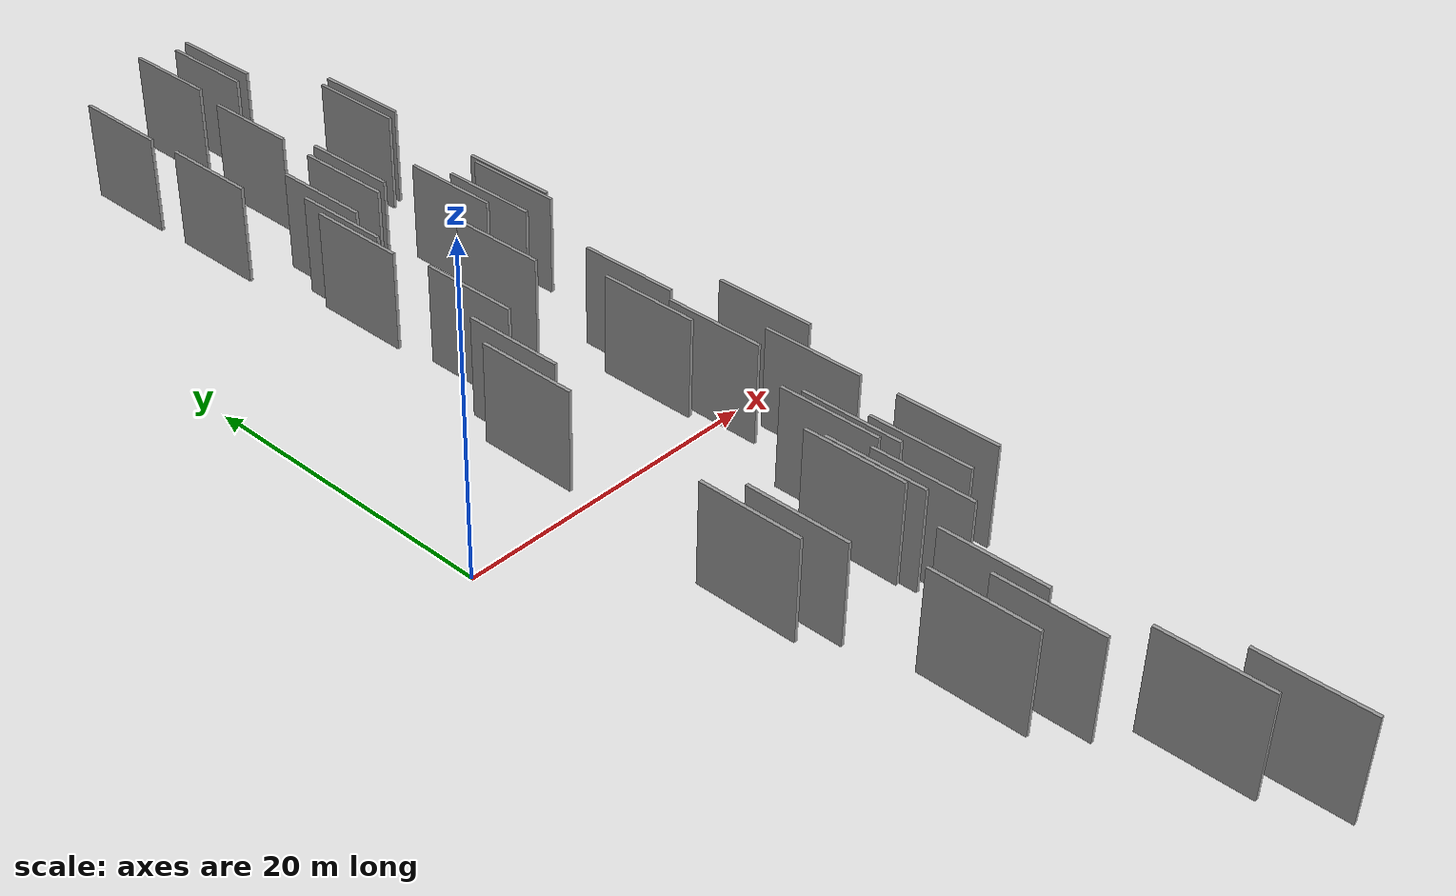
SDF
<sdf version="1.6">
 <world name="default">
  <scene>
   <sky><clouds><speed>12</speed></clouds></sky>
   <ambient>0.4 0.4 0.4 1</ambient>
   <background>0.7 0.7 0.7 1</background>
   <shadows>1</shadows>
  </scene>
  <gravity>0 0 -9.8066</gravity>
  <magnetic_field>6e-06 2.3e-05 -4.2e-05</magnetic_field>
  <physics default="0" name="default_physics" type="ode">
   <ode>
    <solver>
     <type>quick</type>
     <iters>10</iters>
     <sor>1.0</sor>
     <use_dynamic_moi_rescaling>0</use_dynamic_moi_rescaling>
    </solver>
    <constraints>
     <cfm>0</cfm>
     <erp>0.2</erp>
     <contact_max_correcting_vel>100</contact_max_correcting_vel>
     <contact_surface_layer>0.001</contact_surface_layer>
    </constraints>
   </ode>
   <max_step_size>0.004</max_step_size>
   <real_time_factor>1</real_time_factor>
   <real_time_update_rate>250</real_time_update_rate>
  </physics>
  <light name="sun" type="directional">
   <pose>0 0 10 0 0 0</pose>
   <diffuse>0.8 0.8 0.8 1</diffuse>
   <specular>0.2 0.2 0.2 1</specular>
   <attenuation>
    <range>1000</range>
    <constant>0.9</constant>
    <linear>0.01</linear>
    <quadratic>0.001</quadratic>
   </attenuation>
   <direction>-0.5 0.1 -0.9</direction>
  </light>
  <model name="grey_wall_1">
   <static>1</static>
   <pose>10.1155 20.7372 5.0 0.000000 0.000000 1.570796</pose>
   <link name="link">
    <pose>0 0 3.00 0 0 0</pose>
    <collision name="collision"><geometry><box><size>6.00 0.2 6.00</size></box></geometry></collision>
    <visual name="visual">
     <cast_shadows>0</cast_shadows>
     <geometry><box><size>6.00 0.2 6.00</size></box></geometry>
     <material>
      <script>
       <uri>model://grey_wall/materials/scripts</uri>
       <uri>model://grey_wall/materials/textures</uri>
       <name>vrc/grey_wall</name>
      </script>
     </material>
    </visual>
   </link>
  </model>
  <model name="grey_wall_2">
   <static>1</static>
   <pose>5.0447 34.4858 5.0 0.000000 0.000000 1.570796</pose>
   <link name="link">
    <pose>0 0 3.00 0 0 0</pose>
    <collision name="collision"><geometry><box><size>6.00 0.2 6.00</size></box></geometry></collision>
    <visual name="visual">
     <cast_shadows>0</cast_shadows>
     <geometry><box><size>6.00 0.2 6.00</size></box></geometry>
     <material>
      <script>
       <uri>model://grey_wall/materials/scripts</uri>
       <uri>model://grey_wall/materials/textures</uri>
       <name>vrc/grey_wall</name>
      </script>
     </material>
    </visual>
   </link>
  </model>
  <model name="grey_wall_3">
   <static>1</static>
   <pose>8.9073 -35.4801 5.0 0.000000 0.000000 1.570796</pose>
   <link name="link">
    <pose>0 0 3.00 0 0 0</pose>
    <collision name="collision"><geometry><box><size>6.00 0.2 6.00</size></box></geometry></collision>
    <visual name="visual">
     <cast_shadows>0</cast_shadows>
     <geometry><box><size>6.00 0.2 6.00</size></box></geometry>
     <material>
      <script>
       <uri>model://grey_wall/materials/scripts</uri>
       <uri>model://grey_wall/materials/textures</uri>
       <name>vrc/grey_wall</name>
      </script>
     </material>
    </visual>
   </link>
  </model>
  <model name="grey_wall_4">
   <static>1</static>
   <pose>12.4388 -17.6153 5.0 0.000000 0.000000 1.570796</pose>
   <link name="link">
    <pose>0 0 3.00 0 0 0</pose>
    <collision name="collision"><geometry><box><size>6.00 0.2 6.00</size></box></geometry></collision>
    <visual name="visual">
     <cast_shadows>0</cast_shadows>
     <geometry><box><size>6.00 0.2 6.00</size></box></geometry>
     <material>
      <script>
       <uri>model://grey_wall/materials/scripts</uri>
       <uri>model://grey_wall/materials/textures</uri>
       <name>vrc/grey_wall</name>
      </script>
     </material>
    </visual>
   </link>
  </model>
  <model name="grey_wall_5">
   <static>1</static>
   <pose>13.9212 37.0273 5.0 0.000000 0.000000 1.570796</pose>
   <link name="link">
    <pose>0 0 3.00 0 0 0</pose>
    <collision name="collision"><geometry><box><size>6.00 0.2 6.00</size></box></geometry></collision>
    <visual name="visual">
     <cast_shadows>0</cast_shadows>
     <geometry><box><size>6.00 0.2 6.00</size></box></geometry>
     <material>
      <script>
       <uri>model://grey_wall/materials/scripts</uri>
       <uri>model://grey_wall/materials/textures</uri>
       <name>vrc/grey_wall</name>
      </script>
     </material>
    </visual>
   </link>
  </model>
  <model name="grey_wall_6">
   <static>1</static>
   <pose>12.6354 -0.1262 5.0 0.000000 0.000000 1.570796</pose>
   <link name="link">
    <pose>0 0 3.00 0 0 0</pose>
    <collision name="collision"><geometry><box><size>6.00 0.2 6.00</size></box></geometry></collision>
    <visual name="visual">
     <cast_shadows>0</cast_shadows>
     <geometry><box><size>6.00 0.2 6.00</size></box></geometry>
     <material>
      <script>
       <uri>model://grey_wall/materials/scripts</uri>
       <uri>model://grey_wall/materials/textures</uri>
       <name>vrc/grey_wall</name>
      </script>
     </material>
    </visual>
   </link>
  </model>
  <model name="grey_wall_7">
   <static>1</static>
   <pose>4.3865 -16.9799 5.0 0.000000 0.000000 1.570796</pose>
   <link name="link">
    <pose>0 0 3.00 0 0 0</pose>
    <collision name="collision"><geometry><box><size>6.00 0.2 6.00</size></box></geometry></collision>
    <visual name="visual">
     <cast_shadows>0</cast_shadows>
     <geometry><box><size>6.00 0.2 6.00</size></box></geometry>
     <material>
      <script>
       <uri>model://grey_wall/materials/scripts</uri>
       <uri>model://grey_wall/materials/textures</uri>
       <name>vrc/grey_wall</name>
      </script>
     </material>
    </visual>
   </link>
  </model>
  <model name="grey_wall_8">
   <static>1</static>
   <pose>10.5336 -39.0936 5.0 0.000000 0.000000 1.570796</pose>
   <link name="link">
    <pose>0 0 3.00 0 0 0</pose>
    <collision name="collision"><geometry><box><size>6.00 0.2 6.00</size></box></geometry></collision>
    <visual name="visual">
     <cast_shadows>0</cast_shadows>
     <geometry><box><size>6.00 0.2 6.00</size></box></geometry>
     <material>
      <script>
       <uri>model://grey_wall/materials/scripts</uri>
       <uri>model://grey_wall/materials/textures</uri>
       <name>vrc/grey_wall</name>
      </script>
     </material>
    </visual>
   </link>
  </model>
  <model name="grey_wall_9">
   <static>1</static>
   <pose>6.9598 7.1657 5.0 0.000000 0.000000 1.570796</pose>
   <link name="link">
    <pose>0 0 3.00 0 0 0</pose>
    <collision name="collision"><geometry><box><size>6.00 0.2 6.00</size></box></geometry></collision>
    <visual name="visual">
     <cast_shadows>0</cast_shadows>
     <geometry><box><size>6.00 0.2 6.00</size></box></geometry>
     <material>
      <script>
       <uri>model://grey_wall/materials/scripts</uri>
       <uri>model://grey_wall/materials/textures</uri>
       <name>vrc/grey_wall</name>
      </script>
     </material>
    </visual>
   </link>
  </model>
  <model name="grey_wall_10">
   <static>1</static>
   <pose>5.4087 -26.3921 5.0 0.000000 0.000000 1.570796</pose>
   <link name="link">
    <pose>0 0 3.00 0 0 0</pose>
    <collision name="collision"><geometry><box><size>6.00 0.2 6.00</size></box></geometry></collision>
    <visual name="visual">
     <cast_shadows>0</cast_shadows>
     <geometry><box><size>6.00 0.2 6.00</size></box></geometry>
     <material>
      <script>
       <uri>model://grey_wall/materials/scripts</uri>
       <uri>model://grey_wall/materials/textures</uri>
       <name>vrc/grey_wall</name>
      </script>
     </material>
    </visual>
   </link>
  </model>
  <model name="grey_wall_11">
   <static>1</static>
   <pose>10.7234 37.3953 5.0 0.000000 0.000000 1.570796</pose>
   <link name="link">
    <pose>0 0 3.00 0 0 0</pose>
    <collision name="collision"><geometry><box><size>6.00 0.2 6.00</size></box></geometry></collision>
    <visual name="visual">
     <cast_shadows>0</cast_shadows>
     <geometry><box><size>6.00 0.2 6.00</size></box></geometry>
     <material>
      <script>
       <uri>model://grey_wall/materials/scripts</uri>
       <uri>model://grey_wall/materials/textures</uri>
       <name>vrc/grey_wall</name>
      </script>
     </material>
    </visual>
   </link>
  </model>
  <model name="grey_wall_12">
   <static>1</static>
   <pose>11.7979 -14.0360 5.0 0.000000 0.000000 1.570796</pose>
   <link name="link">
    <pose>0 0 3.00 0 0 0</pose>
    <collision name="collision"><geometry><box><size>6.00 0.2 6.00</size></box></geometry></collision>
    <visual name="visual">
     <cast_shadows>0</cast_shadows>
     <geometry><box><size>6.00 0.2 6.00</size></box></geometry>
     <material>
      <script>
       <uri>model://grey_wall/materials/scripts</uri>
       <uri>model://grey_wall/materials/textures</uri>
       <name>vrc/grey_wall</name>
      </script>
     </material>
    </visual>
   </link>
  </model>
  <model name="grey_wall_13">
   <static>1</static>
   <pose>10.2942 29.1949 5.0 0.000000 0.000000 1.570796</pose>
   <link name="link">
    <pose>0 0 3.00 0 0 0</pose>
    <collision name="collision"><geometry><box><size>6.00 0.2 6.00</size></box></geometry></collision>
    <visual name="visual">
     <cast_shadows>0</cast_shadows>
     <geometry><box><size>6.00 0.2 6.00</size></box></geometry>
     <material>
      <script>
       <uri>model://grey_wall/materials/scripts</uri>
       <uri>model://grey_wall/materials/textures</uri>
       <name>vrc/grey_wall</name>
      </script>
     </material>
    </visual>
   </link>
  </model>
  <model name="grey_wall_14">
   <static>1</static>
   <pose>16.9175 27.0791 5.0 0.000000 0.000000 1.570796</pose>
   <link name="link">
    <pose>0 0 3.00 0 0 0</pose>
    <collision name="collision"><geometry><box><size>6.00 0.2 6.00</size></box></geometry></collision>
    <visual name="visual">
     <cast_shadows>0</cast_shadows>
     <geometry><box><size>6.00 0.2 6.00</size></box></geometry>
     <material>
      <script>
       <uri>model://grey_wall/materials/scripts</uri>
       <uri>model://grey_wall/materials/textures</uri>
       <name>vrc/grey_wall</name>
      </script>
     </material>
    </visual>
   </link>
  </model>
  <model name="grey_wall_15">
   <static>1</static>
   <pose>7.8636 19.9528 5.0 0.000000 0.000000 1.570796</pose>
   <link name="link">
    <pose>0 0 3.00 0 0 0</pose>
    <collision name="collision"><geometry><box><size>6.00 0.2 6.00</size></box></geometry></collision>
    <visual name="visual">
     <cast_shadows>0</cast_shadows>
     <geometry><box><size>6.00 0.2 6.00</size></box></geometry>
     <material>
      <script>
       <uri>model://grey_wall/materials/scripts</uri>
       <uri>model://grey_wall/materials/textures</uri>
       <name>vrc/grey_wall</name>
      </script>
     </material>
    </visual>
   </link>
  </model>
  <model name="grey_wall_16">
   <static>1</static>
   <pose>16.1518 13.4465 5.0 0.000000 0.000000 1.570796</pose>
   <link name="link">
    <pose>0 0 3.00 0 0 0</pose>
    <collision name="collision"><geometry><box><size>6.00 0.2 6.00</size></box></geometry></collision>
    <visual name="visual">
     <cast_shadows>0</cast_shadows>
     <geometry><box><size>6.00 0.2 6.00</size></box></geometry>
     <material>
      <script>
       <uri>model://grey_wall/materials/scripts</uri>
       <uri>model://grey_wall/materials/textures</uri>
       <name>vrc/grey_wall</name>
      </script>
     </material>
    </visual>
   </link>
  </model>
  <model name="grey_wall_17">
   <static>1</static>
   <pose>9.7368 -17.1070 5.0 0.000000 0.000000 1.570796</pose>
   <link name="link">
    <pose>0 0 3.00 0 0 0</pose>
    <collision name="collision"><geometry><box><size>6.00 0.2 6.00</size></box></geometry></collision>
    <visual name="visual">
     <cast_shadows>0</cast_shadows>
     <geometry><box><size>6.00 0.2 6.00</size></box></geometry>
     <material>
      <script>
       <uri>model://grey_wall/materials/scripts</uri>
       <uri>model://grey_wall/materials/textures</uri>
       <name>vrc/grey_wall</name>
      </script>
     </material>
    </visual>
   </link>
  </model>
  <model name="grey_wall_18">
   <static>1</static>
   <pose>11.3322 -13.0874 5.0 0.000000 0.000000 1.570796</pose>
   <link name="link">
    <pose>0 0 3.00 0 0 0</pose>
    <collision name="collision"><geometry><box><size>6.00 0.2 6.00</size></box></geometry></collision>
    <visual name="visual">
     <cast_shadows>0</cast_shadows>
     <geometry><box><size>6.00 0.2 6.00</size></box></geometry>
     <material>
      <script>
       <uri>model://grey_wall/materials/scripts</uri>
       <uri>model://grey_wall/materials/textures</uri>
       <name>vrc/grey_wall</name>
      </script>
     </material>
    </visual>
   </link>
  </model>
  <model name="grey_wall_19">
   <static>1</static>
   <pose>16.4337 -4.6340 5.0 0.000000 0.000000 1.570796</pose>
   <link name="link">
    <pose>0 0 3.00 0 0 0</pose>
    <collision name="collision"><geometry><box><size>6.00 0.2 6.00</size></box></geometry></collision>
    <visual name="visual">
     <cast_shadows>0</cast_shadows>
     <geometry><box><size>6.00 0.2 6.00</size></box></geometry>
     <material>
      <script>
       <uri>model://grey_wall/materials/scripts</uri>
       <uri>model://grey_wall/materials/textures</uri>
       <name>vrc/grey_wall</name>
      </script>
     </material>
    </visual>
   </link>
  </model>
  <model name="grey_wall_20">
   <static>1</static>
   <pose>16.4679 14.1107 5.0 0.000000 0.000000 1.570796</pose>
   <link name="link">
    <pose>0 0 3.00 0 0 0</pose>
    <collision name="collision"><geometry><box><size>6.00 0.2 6.00</size></box></geometry></collision>
    <visual name="visual">
     <cast_shadows>0</cast_shadows>
     <geometry><box><size>6.00 0.2 6.00</size></box></geometry>
     <material>
      <script>
       <uri>model://grey_wall/materials/scripts</uri>
       <uri>model://grey_wall/materials/textures</uri>
       <name>vrc/grey_wall</name>
      </script>
     </material>
    </visual>
   </link>
  </model>
  <model name="grey_wall_21">
   <static>1</static>
   <pose>12.8851 36.6154 5.0 0.000000 0.000000 1.570796</pose>
   <link name="link">
    <pose>0 0 3.00 0 0 0</pose>
    <collision name="collision"><geometry><box><size>6.00 0.2 6.00</size></box></geometry></collision>
    <visual name="visual">
     <cast_shadows>0</cast_shadows>
     <geometry><box><size>6.00 0.2 6.00</size></box></geometry>
     <material>
      <script>
       <uri>model://grey_wall/materials/scripts</uri>
       <uri>model://grey_wall/materials/textures</uri>
       <name>vrc/grey_wall</name>
      </script>
     </material>
    </visual>
   </link>
  </model>
  <model name="grey_wall_22">
   <static>1</static>
   <pose>16.1583 26.7006 5.0 0.000000 0.000000 1.570796</pose>
   <link name="link">
    <pose>0 0 3.00 0 0 0</pose>
    <collision name="collision"><geometry><box><size>6.00 0.2 6.00</size></box></geometry></collision>
    <visual name="visual">
     <cast_shadows>0</cast_shadows>
     <geometry><box><size>6.00 0.2 6.00</size></box></geometry>
     <material>
      <script>
       <uri>model://grey_wall/materials/scripts</uri>
       <uri>model://grey_wall/materials/textures</uri>
       <name>vrc/grey_wall</name>
      </script>
     </material>
    </visual>
   </link>
  </model>
  <model name="grey_wall_23">
   <static>1</static>
   <pose>5.1734 26.4346 5.0 0.000000 0.000000 1.570796</pose>
   <link name="link">
    <pose>0 0 3.00 0 0 0</pose>
    <collision name="collision"><geometry><box><size>6.00 0.2 6.00</size></box></geometry></collision>
    <visual name="visual">
     <cast_shadows>0</cast_shadows>
     <geometry><box><size>6.00 0.2 6.00</size></box></geometry>
     <material>
      <script>
       <uri>model://grey_wall/materials/scripts</uri>
       <uri>model://grey_wall/materials/textures</uri>
       <name>vrc/grey_wall</name>
      </script>
     </material>
    </visual>
   </link>
  </model>
  <model name="grey_wall_24">
   <static>1</static>
   <pose>9.4980 -16.1049 5.0 0.000000 0.000000 1.570796</pose>
   <link name="link">
    <pose>0 0 3.00 0 0 0</pose>
    <collision name="collision"><geometry><box><size>6.00 0.2 6.00</size></box></geometry></collision>
    <visual name="visual">
     <cast_shadows>0</cast_shadows>
     <geometry><box><size>6.00 0.2 6.00</size></box></geometry>
     <material>
      <script>
       <uri>model://grey_wall/materials/scripts</uri>
       <uri>model://grey_wall/materials/textures</uri>
       <name>vrc/grey_wall</name>
      </script>
     </material>
    </visual>
   </link>
  </model>
  <model name="grey_wall_25">
   <static>1</static>
   <pose>10.5479 -19.2135 5.0 0.000000 0.000000 1.570796</pose>
   <link name="link">
    <pose>0 0 3.00 0 0 0</pose>
    <collision name="collision"><geometry><box><size>6.00 0.2 6.00</size></box></geometry></collision>
    <visual name="visual">
     <cast_shadows>0</cast_shadows>
     <geometry><box><size>6.00 0.2 6.00</size></box></geometry>
     <material>
      <script>
       <uri>model://grey_wall/materials/scripts</uri>
       <uri>model://grey_wall/materials/textures</uri>
       <name>vrc/grey_wall</name>
      </script>
     </material>
    </visual>
   </link>
  </model>
  <model name="grey_wall_26">
   <static>1</static>
   <pose>7.9565 -25.0609 5.0 0.000000 0.000000 1.570796</pose>
   <link name="link">
    <pose>0 0 3.00 0 0 0</pose>
    <collision name="collision"><geometry><box><size>6.00 0.2 6.00</size></box></geometry></collision>
    <visual name="visual">
     <cast_shadows>0</cast_shadows>
     <geometry><box><size>6.00 0.2 6.00</size></box></geometry>
     <material>
      <script>
       <uri>model://grey_wall/materials/scripts</uri>
       <uri>model://grey_wall/materials/textures</uri>
       <name>vrc/grey_wall</name>
      </script>
     </material>
    </visual>
   </link>
  </model>
  <model name="grey_wall_27">
   <static>1</static>
   <pose>14.6997 -9.2679 5.0 0.000000 0.000000 1.570796</pose>
   <link name="link">
    <pose>0 0 3.00 0 0 0</pose>
    <collision name="collision"><geometry><box><size>6.00 0.2 6.00</size></box></geometry></collision>
    <visual name="visual">
     <cast_shadows>0</cast_shadows>
     <geometry><box><size>6.00 0.2 6.00</size></box></geometry>
     <material>
      <script>
       <uri>model://grey_wall/materials/scripts</uri>
       <uri>model://grey_wall/materials/textures</uri>
       <name>vrc/grey_wall</name>
      </script>
     </material>
    </visual>
   </link>
  </model>
  <model name="grey_wall_28">
   <static>1</static>
   <pose>3.1330 -15.2780 5.0 0.000000 0.000000 1.570796</pose>
   <link name="link">
    <pose>0 0 3.00 0 0 0</pose>
    <collision name="collision"><geometry><box><size>6.00 0.2 6.00</size></box></geometry></collision>
    <visual name="visual">
     <cast_shadows>0</cast_shadows>
     <geometry><box><size>6.00 0.2 6.00</size></box></geometry>
     <material>
      <script>
       <uri>model://grey_wall/materials/scripts</uri>
       <uri>model://grey_wall/materials/textures</uri>
       <name>vrc/grey_wall</name>
      </script>
     </material>
    </visual>
   </link>
  </model>
  <model name="grey_wall_29">
   <static>1</static>
   <pose>14.7145 -17.4931 5.0 0.000000 0.000000 1.570796</pose>
   <link name="link">
    <pose>0 0 3.00 0 0 0</pose>
    <collision name="collision"><geometry><box><size>6.00 0.2 6.00</size></box></geometry></collision>
    <visual name="visual">
     <cast_shadows>0</cast_shadows>
     <geometry><box><size>6.00 0.2 6.00</size></box></geometry>
     <material>
      <script>
       <uri>model://grey_wall/materials/scripts</uri>
       <uri>model://grey_wall/materials/textures</uri>
       <name>vrc/grey_wall</name>
      </script>
     </material>
    </visual>
   </link>
  </model>
  <model name="grey_wall_30">
   <static>1</static>
   <pose>13.9388 2.5211 5.0 0.000000 0.000000 1.570796</pose>
   <link name="link">
    <pose>0 0 3.00 0 0 0</pose>
    <collision name="collision"><geometry><box><size>6.00 0.2 6.00</size></box></geometry></collision>
    <visual name="visual">
     <cast_shadows>0</cast_shadows>
     <geometry><box><size>6.00 0.2 6.00</size></box></geometry>
     <material>
      <script>
       <uri>model://grey_wall/materials/scripts</uri>
       <uri>model://grey_wall/materials/textures</uri>
       <name>vrc/grey_wall</name>
      </script>
     </material>
    </visual>
   </link>
  </model>
  <model name="grey_wall_31">
   <static>1</static>
   <pose>5.1548 2.0203 5.0 0.000000 0.000000 1.570796</pose>
   <link name="link">
    <pose>0 0 3.00 0 0 0</pose>
    <collision name="collision"><geometry><box><size>6.00 0.2 6.00</size></box></geometry></collision>
    <visual name="visual">
     <cast_shadows>0</cast_shadows>
     <geometry><box><size>6.00 0.2 6.00</size></box></geometry>
     <material>
      <script>
       <uri>model://grey_wall/materials/scripts</uri>
       <uri>model://grey_wall/materials/textures</uri>
       <name>vrc/grey_wall</name>
      </script>
     </material>
    </visual>
   </link>
  </model>
  <model name="grey_wall_32">
   <static>1</static>
   <pose>6.9654 17.1893 5.0 0.000000 0.000000 1.570796</pose>
   <link name="link">
    <pose>0 0 3.00 0 0 0</pose>
    <collision name="collision"><geometry><box><size>6.00 0.2 6.00</size></box></geometry></collision>
    <visual name="visual">
     <cast_shadows>0</cast_shadows>
     <geometry><box><size>6.00 0.2 6.00</size></box></geometry>
     <material>
      <script>
       <uri>model://grey_wall/materials/scripts</uri>
       <uri>model://grey_wall/materials/textures</uri>
       <name>vrc/grey_wall</name>
      </script>
     </material>
    </visual>
   </link>
  </model>
  <model name="grey_wall_33">
   <static>1</static>
   <pose>13.2814 -4.0291 5.0 0.000000 0.000000 1.570796</pose>
   <link name="link">
    <pose>0 0 3.00 0 0 0</pose>
    <collision name="collision"><geometry><box><size>6.00 0.2 6.00</size></box></geometry></collision>
    <visual name="visual">
     <cast_shadows>0</cast_shadows>
     <geometry><box><size>6.00 0.2 6.00</size></box></geometry>
     <material>
      <script>
       <uri>model://grey_wall/materials/scripts</uri>
       <uri>model://grey_wall/materials/textures</uri>
       <name>vrc/grey_wall</name>
      </script>
     </material>
    </visual>
   </link>
  </model>
  <model name="grey_wall_34">
   <static>1</static>
   <pose>14.2866 13.4302 5.0 0.000000 0.000000 1.570796</pose>
   <link name="link">
    <pose>0 0 3.00 0 0 0</pose>
    <collision name="collision"><geometry><box><size>6.00 0.2 6.00</size></box></geometry></collision>
    <visual name="visual">
     <cast_shadows>0</cast_shadows>
     <geometry><box><size>6.00 0.2 6.00</size></box></geometry>
     <material>
      <script>
       <uri>model://grey_wall/materials/scripts</uri>
       <uri>model://grey_wall/materials/textures</uri>
       <name>vrc/grey_wall</name>
      </script>
     </material>
    </visual>
   </link>
  </model>
  <model name="grey_wall_35">
   <static>1</static>
   <pose>7.0122 -28.6047 5.0 0.000000 0.000000 1.570796</pose>
   <link name="link">
    <pose>0 0 3.00 0 0 0</pose>
    <collision name="collision"><geometry><box><size>6.00 0.2 6.00</size></box></geometry></collision>
    <visual name="visual">
     <cast_shadows>0</cast_shadows>
     <geometry><box><size>6.00 0.2 6.00</size></box></geometry>
     <material>
      <script>
       <uri>model://grey_wall/materials/scripts</uri>
       <uri>model://grey_wall/materials/textures</uri>
       <name>vrc/grey_wall</name>
      </script>
     </material>
    </visual>
   </link>
  </model>
  <model name="grey_wall_36">
   <static>1</static>
   <pose>6.4423 15.3518 5.0 0.000000 0.000000 1.570796</pose>
   <link name="link">
    <pose>0 0 3.00 0 0 0</pose>
    <collision name="collision"><geometry><box><size>6.00 0.2 6.00</size></box></geometry></collision>
    <visual name="visual">
     <cast_shadows>0</cast_shadows>
     <geometry><box><size>6.00 0.2 6.00</size></box></geometry>
     <material>
      <script>
       <uri>model://grey_wall/materials/scripts</uri>
       <uri>model://grey_wall/materials/textures</uri>
       <name>vrc/grey_wall</name>
      </script>
     </material>
    </visual>
   </link>
  </model>
  <model name="grey_wall_37">
   <static>1</static>
   <pose>4.0045 -0.1071 5.0 0.000000 0.000000 1.570796</pose>
   <link name="link">
    <pose>0 0 3.00 0 0 0</pose>
    <collision name="collision"><geometry><box><size>6.00 0.2 6.00</size></box></geometry></collision>
    <visual name="visual">
     <cast_shadows>0</cast_shadows>
     <geometry><box><size>6.00 0.2 6.00</size></box></geometry>
     <material>
      <script>
       <uri>model://grey_wall/materials/scripts</uri>
       <uri>model://grey_wall/materials/textures</uri>
       <name>vrc/grey_wall</name>
      </script>
     </material>
    </visual>
   </link>
  </model>
  <model name="grey_wall_38">
   <static>1</static>
   <pose>11.0529 21.3214 5.0 0.000000 0.000000 1.570796</pose>
   <link name="link">
    <pose>0 0 3.00 0 0 0</pose>
    <collision name="collision"><geometry><box><size>6.00 0.2 6.00</size></box></geometry></collision>
    <visual name="visual">
     <cast_shadows>0</cast_shadows>
     <geometry><box><size>6.00 0.2 6.00</size></box></geometry>
     <material>
      <script>
       <uri>model://grey_wall/materials/scripts</uri>
       <uri>model://grey_wall/materials/textures</uri>
       <name>vrc/grey_wall</name>
      </script>
     </material>
    </visual>
   </link>
  </model>
  <model name="grey_wall_39">
   <static>1</static>
   <pose>13.4547 15.6265 5.0 0.000000 0.000000 1.570796</pose>
   <link name="link">
    <pose>0 0 3.00 0 0 0</pose>
    <collision name="collision"><geometry><box><size>6.00 0.2 6.00</size></box></geometry></collision>
    <visual name="visual">
     <cast_shadows>0</cast_shadows>
     <geometry><box><size>6.00 0.2 6.00</size></box></geometry>
     <material>
      <script>
       <uri>model://grey_wall/materials/scripts</uri>
       <uri>model://grey_wall/materials/textures</uri>
       <name>vrc/grey_wall</name>
      </script>
     </material>
    </visual>
   </link>
  </model>
  <model name="grey_wall_40">
   <static>1</static>
   <pose>11.1462 9.5098 5.0 0.000000 0.000000 1.570796</pose>
   <link name="link">
    <pose>0 0 3.00 0 0 0</pose>
    <collision name="collision"><geometry><box><size>6.00 0.2 6.00</size></box></geometry></collision>
    <visual name="visual">
     <cast_shadows>0</cast_shadows>
     <geometry><box><size>6.00 0.2 6.00</size></box></geometry>
     <material>
      <script>
       <uri>model://grey_wall/materials/scripts</uri>
       <uri>model://grey_wall/materials/textures</uri>
       <name>vrc/grey_wall</name>
      </script>
     </material>
    </visual>
   </link>
  </model>
 </world>
</sdf>
